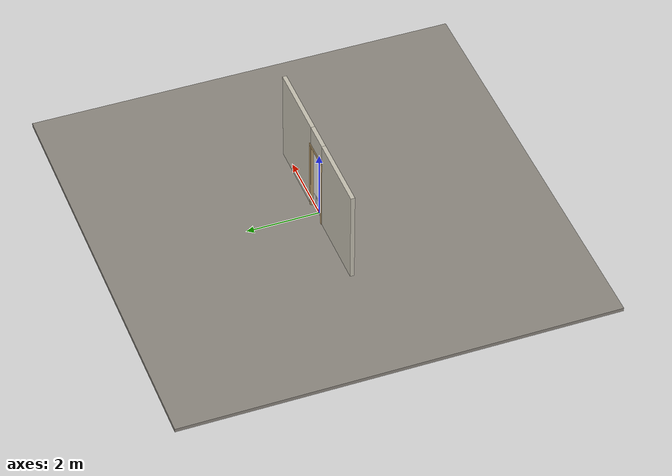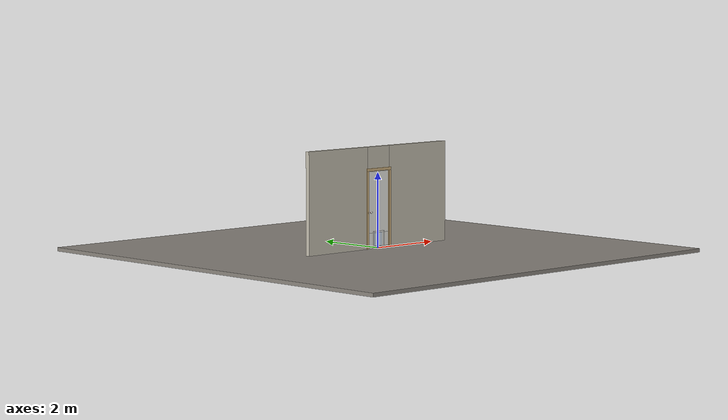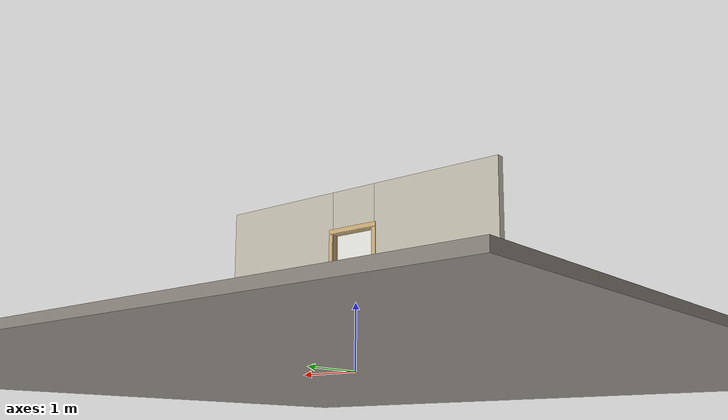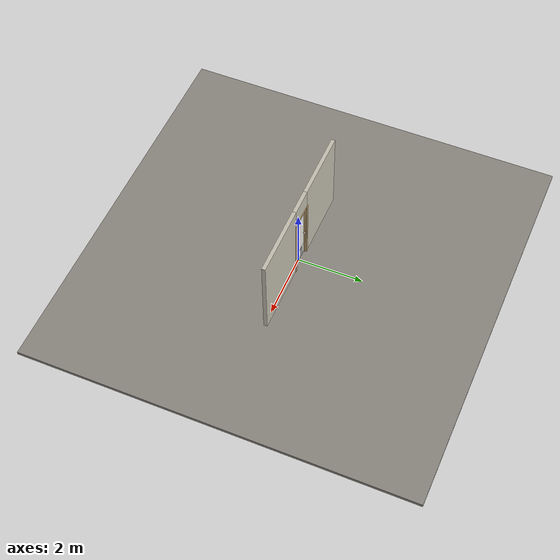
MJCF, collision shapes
<?xml version="1.0" ?>
<mujoco model="db0703_swing_single_full">
  <compiler angle="radian" meshdir="../../hardware" texturedir="../../textures" autolimits="true" inertiafromgeom="false"/>
  <option timestep="0.002" integrator="implicitfast" cone="elliptic" impratio="10" noslip_iterations="3">
    <flag multiccd="enable"/>
  </option>
  <size memory="16M"/>
  <default>
    <geom condim="4" solref="0.005 1" solimp="0.95 0.99 0.001"/>
    <joint solreflimit="0.005 1" solimplimit="0.95 0.99 0.001"/>
    <tendon solreflimit="0.005 1"/>
    <equality solref="0.002 1"/>
  </default>
  <visual>
    <headlight ambient="0.4 0.4 0.4" diffuse="0.7 0.7 0.7" specular="0.2 0.2 0.2"/>
    <quality shadowsize="4096"/>
    <map znear="0.01" zfar="60"/>
  </visual>
  <asset>
    <mesh name="hinge_96510cf394" file="hinge_96510cf394.obj"/>
    <mesh name="hinge_jamb_7fd4ca52b2" file="hinge_jamb_7fd4ca52b2.obj"/>
    <mesh name="knob_d6523d5571" file="knob_d6523d5571.obj"/>
    <material name="mat_floor" rgba="0.55 0.53 0.5 1" specular="0.2" shininess="0.15" reflectance="0"/>
    <material name="mat_wall" rgba="0.78 0.76 0.7 1" specular="0.2" shininess="0.1" reflectance="0"/>
    <material name="mat_leaf" rgba="0.93 0.93 0.91 1" specular="0.2" shininess="0.64" reflectance="0"/>
    <material name="mat_hinge" rgba="0.65 0.66 0.68 1" specular="0.74" shininess="0.5" reflectance="0.36"/>
    <material name="mat_op_pvc" rgba="0.92 0.92 0.9 1" specular="0.2" shininess="0.6" reflectance="0"/>
    <material name="mat_trim" rgba="0.85 0.66 0.3 1" specular="0.8" shininess="0.75" reflectance="0.4"/>
    <material name="mat_bolt" rgba="0.85 0.66 0.3 1" specular="0.8" shininess="0.75" reflectance="0.4"/>
    <material name="mat_frame" rgba="0.82 0.7 0.5 1" specular="0.2" shininess="0.45" reflectance="0"/>
    <material name="mat_petframe" rgba="0.92 0.92 0.9 1" specular="0.2" shininess="0.6" reflectance="0"/>
    <material name="mat_petflap" rgba="0.85 0.9 0.95 0.45" specular="0.2" shininess="0.7" reflectance="0.1"/>
    <texture name="skybox" type="skybox" builtin="gradient" rgb1="0.6 0.7 0.85" rgb2="0.9 0.92 0.95" width="256" height="256"/>
  </asset>
  <worldbody>
    <light name="sun" pos="1.5 -2.5 4" dir="-0.3 0.5 -0.8" directional="true" diffuse="0.8 0.8 0.8" specular="0.3 0.3 0.3" castshadow="true"/>
    <light name="fill" pos="-1.5 2.5 3" dir="0.3 -0.5 -0.7" directional="true" diffuse="0.35 0.35 0.4" castshadow="false"/>
    <camera name="robot_view" pos="0 -2.509187 1.734312" xyaxes="1 0 0 0 0.26963 0.962964" fovy="52"/>
    <camera name="far_view" pos="0 2.575187 1.734312" xyaxes="-1 0 0 0 -0.26963 0.962964" fovy="52"/>
    <camera name="iso" pos="-1.932062 -2.102438 2.141063" xyaxes="0.741536 -0.670913 0 0.242917 0.268487 0.932151" fovy="46"/>
    <camera name="detail_handle" pos="-0.115 -0.864 1.245" xyaxes="0.97561 0.219512 0 -0.070934 0.315262 0.94635" fovy="38"/>
    <geom name="floor" type="box" size="6 6 0.05" pos="0 0 -0.05" material="mat_floor" group="0" contype="1" conaffinity="1" friction="0.8 0.005 0.0001" density="2400"/>
    <geom name="wall_left" type="box" size="1.046 0.0575 1.35" pos="-1.454 0.033 1.35" material="mat_wall" group="0" contype="1" conaffinity="1" friction="0.6 0.005 0.0001" density="800"/>
    <geom name="wall_right" type="box" size="1.061 0.0575 1.35" pos="1.439 0.033 1.35" material="mat_wall" group="0" contype="1" conaffinity="1" friction="0.6 0.005 0.0001" density="800"/>
    <geom name="wall_header" type="box" size="0.393 0.0575 0.303" pos="-0.015 0.033 2.397" material="mat_wall" group="0" contype="1" conaffinity="1" friction="0.6 0.005 0.0001" density="800"/>
    <geom name="hinge_0_jamb" type="mesh" mesh="hinge_jamb_7fd4ca52b2" pos="0.356 -0.0245 0.259" quat="0 0 1 0" material="mat_hinge" group="1" contype="0" conaffinity="0" density="7850"/>
    <geom name="hinge_1_jamb" type="mesh" mesh="hinge_jamb_7fd4ca52b2" pos="0.356 -0.0245 1.861" quat="0 0 1 0" material="mat_hinge" group="1" contype="0" conaffinity="0" density="7850"/>
    <geom name="jamb_hinge" type="box" size="0.0095 0.0575 1.0225" pos="0.3685 0.033 1.0225" material="mat_frame" group="0" contype="1" conaffinity="1" friction="0.6 0.005 0.0001" density="400"/>
    <geom name="strike_965_wall_n" type="box" size="0.0245 0.041325 0.0167" pos="-0.3835 0.049175 0.965" material="mat_frame" group="0" contype="1" conaffinity="1" friction="0.6 0.005 0.0001" density="400"/>
    <geom name="strike_965_wall_p" type="box" size="0.0245 0.008 0.0167" pos="-0.3835 -0.01585 0.965" material="mat_frame" group="0" contype="1" conaffinity="1" friction="0.6 0.005 0.0001" density="400"/>
    <geom name="strike_965_ramp" type="box" size="0.0245 0.01649 0.0167" pos="-0.388136 -0.028673 0.965" quat="0.977148 0 0 -0.212558" material="mat_frame" group="0" contype="1" conaffinity="1" friction="0.12 0.005 0.0001" density="400"/>
    <geom name="strike_965_back" type="box" size="0.01615 0.00785 0.0167" pos="-0.39185 0 0.965" material="mat_frame" group="0" contype="1" conaffinity="1" friction="0.6 0.005 0.0001" density="400"/>
    <geom name="jamb_strike_0" type="box" size="0.0245 0.0575 0.47415" pos="-0.3835 0.033 0.47415" material="mat_frame" group="0" contype="1" conaffinity="1" friction="0.6 0.005 0.0001" density="400"/>
    <geom name="jamb_strike_1" type="box" size="0.0245 0.0575 0.53165" pos="-0.3835 0.033 1.51335" material="mat_frame" group="0" contype="1" conaffinity="1" friction="0.6 0.005 0.0001" density="400"/>
    <geom name="jamb_head" type="box" size="0.393 0.0575 0.0095" pos="-0.015 0.033 2.0545" material="mat_frame" group="0" contype="1" conaffinity="1" friction="0.6 0.005 0.0001" density="400"/>
    <geom name="head_stud" type="box" size="0.393 0.0575 0.015" pos="-0.015 0.033 2.079" material="mat_wall" group="0" contype="1" conaffinity="1" friction="0.6 0.005 0.0001" density="500"/>
    <geom name="stop_hinge" type="box" size="0.0055 0.016 1.0225" pos="0.3535 0.034 1.0225" material="mat_frame" group="0" contype="1" conaffinity="1" friction="0.6 0.005 0.0001" density="400"/>
    <geom name="stop_strike" type="box" size="0.0055 0.016 1.0225" pos="-0.3535 0.034 1.0225" material="mat_frame" group="0" contype="1" conaffinity="1" friction="0.6 0.005 0.0001" density="400"/>
    <geom name="stop_head" type="box" size="0.359 0.016 0.0055" pos="0 0.034 2.0395" material="mat_frame" group="0" contype="1" conaffinity="1" friction="0.6 0.005 0.0001" density="400"/>
    <geom name="casing_l_n" type="box" size="0.035 0.008 1.032" pos="-0.408 -0.0325 1.0225" material="mat_frame" group="2" contype="0" conaffinity="0" density="400"/>
    <geom name="casing_r_n" type="box" size="0.035 0.008 1.032" pos="0.408 -0.0325 1.0225" material="mat_frame" group="2" contype="0" conaffinity="0" density="400"/>
    <geom name="casing_h_n" type="box" size="0.443 0.008 0.035" pos="0 -0.0325 2.094" material="mat_frame" group="2" contype="0" conaffinity="0" density="400"/>
    <geom name="casing_l_p" type="box" size="0.035 0.008 1.032" pos="-0.408 0.0985 1.0225" material="mat_frame" group="2" contype="0" conaffinity="0" density="400"/>
    <geom name="casing_r_p" type="box" size="0.035 0.008 1.032" pos="0.408 0.0985 1.0225" material="mat_frame" group="2" contype="0" conaffinity="0" density="400"/>
    <geom name="casing_h_p" type="box" size="0.443 0.008 0.035" pos="0 0.0985 2.094" material="mat_frame" group="2" contype="0" conaffinity="0" density="400"/>
    <site name="approach_point" pos="0 -1.5 0" quat="1 0 0 0" size="0.05" rgba="0.2 0.9 0.2 0.5" group="4"/>
    <site name="goal_point" pos="0 1.5 0" quat="1 0 0 0" size="0.05" rgba="0.2 0.9 0.2 0.5" group="4"/>
    <site name="door_plane_center" pos="0 0 1.0225" quat="1 0 0 0" size="0.02" rgba="0.2 0.9 0.2 0.5" group="4"/>
    <body name="leaf" pos="0.359 0 0">
      <inertial pos="-0.351677 -0.000295 0.924649" mass="10.312373" quat="0.50017 -0.501323 -0.498622 -0.499882" diaginertia="0.44268933 3.743730742 4.18384775"/>
      <joint name="leaf_hinge" type="hinge" axis="0 0 1" pos="-0.003 -0.0245 0" limited="true" range="0 1.745329" damping="0.143782" frictionloss="3.309815" armature="0.02"/>
      <geom name="leaf_slab_below" type="box" size="0.3555 0.0175 0.0245" pos="-0.3585 0 0.0335" material="mat_leaf" group="0" contype="1" conaffinity="1" friction="0.35 0.005 0.0001" density="1"/>
      <geom name="leaf_slab_above" type="box" size="0.3555 0.0175 0.8105" pos="-0.3585 0 1.2305" material="mat_leaf" group="0" contype="1" conaffinity="1" friction="0.35 0.005 0.0001" density="1"/>
      <geom name="leaf_slab_left" type="box" size="0.09725 0.0175 0.181" pos="-0.61675 0 0.239" material="mat_leaf" group="0" contype="1" conaffinity="1" friction="0.35 0.005 0.0001" density="1"/>
      <geom name="leaf_slab_right" type="box" size="0.09725 0.0175 0.181" pos="-0.10025 0 0.239" material="mat_leaf" group="0" contype="1" conaffinity="1" friction="0.35 0.005 0.0001" density="1"/>
      <geom name="hinge_0" type="mesh" mesh="hinge_96510cf394" pos="-0.003 -0.0245 0.259" quat="0 0 1 0" material="mat_hinge" group="1" contype="0" conaffinity="0" density="7850"/>
      <geom name="hinge_1" type="mesh" mesh="hinge_96510cf394" pos="-0.003 -0.0245 1.861" quat="0 0 1 0" material="mat_hinge" group="1" contype="0" conaffinity="0" density="7850"/>
      <geom name="leaf_latch_bolt_faceplate" type="box" size="0.0006 0.01235 0.0267" pos="-0.7134 0 0.965" material="mat_bolt" group="1" contype="0" conaffinity="0" density="8500"/>
      <geom name="pet_frame_top" type="box" size="0.2 0.0235 0.02" pos="-0.3585 0 0.439" material="mat_petframe" group="2" contype="0" conaffinity="0" density="1200"/>
      <geom name="pet_frame_l" type="box" size="0.02 0.0235 0.22" pos="-0.5385 0 0.239" material="mat_petframe" group="2" contype="0" conaffinity="0" density="1200"/>
      <geom name="pet_frame_r" type="box" size="0.02 0.0235 0.22" pos="-0.1785 0 0.239" material="mat_petframe" group="2" contype="0" conaffinity="0" density="1200"/>
      <site name="leaf_edge_mid" pos="-0.714 0 1.016" quat="1 0 0 0" size="0.02" rgba="0.2 0.9 0.2 0.5" group="4"/>
      <body name="leaf_handle" pos="-0.654 0 0.965">
        <inertial pos="0 0 0" mass="3.575149" quat="0.5 0.5 0.5 0.5" diaginertia="0.003579626 0.012911038 0.012911038"/>
        <joint name="leaf_handle_hinge" type="hinge" axis="0 1 0" limited="true" range="0 0.87" damping="0.164801" frictionloss="0.039" stiffness="0.5" springref="-0.5" armature="0.01"/>
        <geom name="leaf_handle_spindle" type="cylinder" size="0.006 0.0255" pos="0 0 0" quat="0.707107 -0.707107 0 0" material="mat_op_pvc" group="1" contype="0" conaffinity="0" density="7850"/>
        <geom name="leaf_handle_knob_n" type="mesh" mesh="knob_d6523d5571" pos="0 -0.0175 0" quat="0 0 -0.707107 0.707107" material="mat_op_pvc" group="1" contype="0" conaffinity="0" density="3000"/>
        <geom name="leaf_handle_knob_col_n" type="sphere" size="0.0243" pos="0 -0.064 0" material="mat_op_pvc" group="0" contype="1" conaffinity="1" friction="0.15 0.01 0.0001" density="3000"/>
        <geom name="leaf_handle_knob_neck_n" type="cylinder" size="0.011 0.012" pos="0 -0.0295 0" quat="0.707107 -0.707107 0 0" material="mat_op_pvc" group="3" contype="1" conaffinity="1" rgba="0.8 0.3 0.3 0.25" friction="0.6 0.005 0.0001" density="3000"/>
        <geom name="leaf_handle_knob_p" type="mesh" mesh="knob_d6523d5571" pos="0 0.0175 0" quat="0 0 0.707107 0.707107" material="mat_op_pvc" group="1" contype="0" conaffinity="0" density="3000"/>
        <geom name="leaf_handle_knob_col_p" type="sphere" size="0.0243" pos="0 0.064 0" material="mat_op_pvc" group="0" contype="1" conaffinity="1" friction="0.15 0.01 0.0001" density="3000"/>
        <geom name="leaf_handle_knob_neck_p" type="cylinder" size="0.011 0.012" pos="0 0.0295 0" quat="0.707107 -0.707107 0 0" material="mat_op_pvc" group="3" contype="1" conaffinity="1" rgba="0.8 0.3 0.3 0.25" friction="0.6 0.005 0.0001" density="3000"/>
        <site name="leaf_handle_grip_n" pos="0 -0.064 0" quat="1 0 0 0" size="0.012" rgba="0.2 0.9 0.2 0.5" group="4"/>
        <site name="leaf_handle_grip_p" pos="0 0.064 0" quat="1 0 0 0" size="0.012" rgba="0.2 0.9 0.2 0.5" group="4"/>
      </body>
      <body name="leaf_latch_bolt" pos="-0.714 0 0.965">
        <inertial pos="0.00865 0 0" mass="0.041419" quat="0.92388 0.382683 0 0" diaginertia="0.000000798 0.000005598 0.000005598"/>
        <joint name="leaf_latch_bolt_slide" type="slide" axis="1 0 0" limited="true" range="0 0.0127" damping="2" frictionloss="0.3" stiffness="300" springref="-0.008333" armature="0.1"/>
        <geom name="leaf_latch_bolt_capsule" type="capsule" size="0.00635 0.015" pos="0.00865 0 0" quat="0.707107 0 -0.707107 0" material="mat_bolt" group="0" contype="1" conaffinity="1" friction="0.2 0.005 0.0001" density="8500"/>
      </body>
      <body name="pet_flap" pos="-0.3585 0 0.419">
        <inertial pos="0 0 -0.18" mass="0.092586" quat="-0.5 0.5 0.5 0.5" diaginertia="0.000751182 0.000956106 0.001707041"/>
        <joint name="pet_flap_hinge" type="hinge" axis="-1 0 0" limited="true" range="-1.45 1.45" damping="0.02" frictionloss="0.02" armature="0.005"/>
        <geom name="pet_flap_geom" type="box" size="0.156 0.002 0.176" pos="0 0 -0.18" material="mat_petflap" group="0" contype="1" conaffinity="1" friction="0.6 0.005 0.0001" density="1250"/>
      </body>
    </body>
  </worldbody>
  <tendon>
    <fixed name="leaf_latch_bolt_coupling" limited="true" range="0 10">
      <joint joint="leaf_latch_bolt_slide" coef="1"/>
      <joint joint="leaf_handle_hinge" coef="-0.015679"/>
    </fixed>
  </tendon>
  <sensor>
    <jointpos name="leaf_hinge_pos" joint="leaf_hinge"/>
    <jointvel name="leaf_hinge_vel" joint="leaf_hinge"/>
    <jointpos name="leaf_handle_hinge_pos" joint="leaf_handle_hinge"/>
    <jointvel name="leaf_handle_hinge_vel" joint="leaf_handle_hinge"/>
    <jointpos name="leaf_latch_bolt_slide_pos" joint="leaf_latch_bolt_slide"/>
    <jointvel name="leaf_latch_bolt_slide_vel" joint="leaf_latch_bolt_slide"/>
    <jointpos name="pet_flap_hinge_pos" joint="pet_flap_hinge"/>
    <jointvel name="pet_flap_hinge_vel" joint="pet_flap_hinge"/>
  </sensor>
</mujoco>
